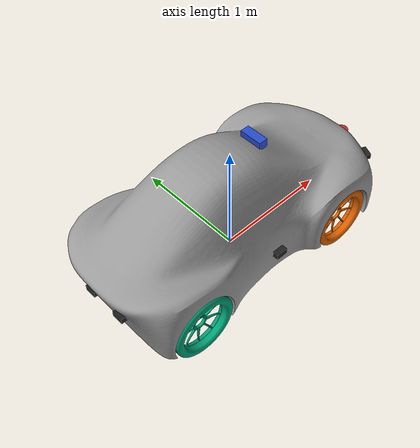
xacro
<?xml version="1.0"?>
<robot name="via"
    xmlns:xacro="http://www.ros.org/wiki/xacro">
    <link name="base_footprint" />

    <xacro:include filename="inertial_macros.xacro" />

    <xacro:property name="base_length" value="2.63" />
    <xacro:property name="base_width" value="1.26" />
    <xacro:property name="base_height" value="0.928" />

    <xacro:property name="base_radius" value="0.25" />
    <xacro:property name="wheel_length" value="0.12" />
    <xacro:property name="front_wheel_x_offset" value="0.6775" />
    <xacro:property name="rear_wheel_x_offset" value="0.82" />
    <xacro:property name="wheel_z_offset" value="0.1" />

    <link name="base_link">
        <xacro:inertial_box mass="100" x="${base_length}" y="${base_width}" z="${base_height}">
            <origin xyz="0 0 ${base_height/2}" rpy="0 0 0" />
        </xacro:inertial_box>
        <visual>
            <origin rpy="0 0 1.57" xyz="0 0 ${base_height/2}" />
            <geometry>
                <mesh filename="package://via_description/meshes/via_chassis.dae" />
            </geometry>
            <material name="Gray" />
        </visual>
        <collision>
            <origin rpy="0 0 1.57" xyz="0 0 ${base_height/2}" />
            <geometry>
                <mesh filename="package://via_description/meshes/via_chassis.dae" />
            </geometry>
        </collision>
    </link>

    <link name="rear_right_axle">
        <visual>
            <geometry>
                <mesh filename="package://via_description/meshes/tire.dae" />
            </geometry>
            <origin xyz="0 0 0" rpy="${pi / 2.0} 0 0" />
        </visual>

        <xacro:inertial_cylinder mass="10" length="${wheel_length}" radius="${base_radius}">
            <origin xyz="0 0 0" rpy="${pi / 2.0} 0 0" />
        </xacro:inertial_cylinder>

        <collision>
            <geometry>
                <cylinder radius="${base_radius}" length="${wheel_length}" />
            </geometry>
            <origin xyz="0 0 0" rpy="${pi / 2.0} 0 0" />
        </collision>
    </link>

    <link name="rear_left_axle">
        <visual>
            <geometry>
                <mesh filename="package://via_description/meshes/tire.dae" />
            </geometry>
            <origin xyz="0 0 0" rpy="${pi / 2.0} 0 ${pi}" />
        </visual>

        <xacro:inertial_cylinder mass="10" length="${wheel_length}" radius="${base_radius}">
            <origin xyz="0 0 0" rpy="${pi / 2.0} 0 0" />
        </xacro:inertial_cylinder>

        <collision>
            <geometry>
                <cylinder radius="${base_radius}" length="${wheel_length}" />
            </geometry>
            <origin xyz="0 0 0" rpy="${pi / 2.0} 0 0" />
        </collision>
    </link>

    <link name="front_right_steer">
        <inertial>
            <origin rpy="0 0 0" xyz="0.003381 1.5929e-07 0.02162" />
            <mass value="1" />
            <inertia ixx="0.01" ixy="0.0" ixz="0.0" iyy="0.01" iyz="0.0" izz="0.01" />
        </inertial>
    </link>

    <link name="front_right_axle">
        <visual>
            <geometry>
                <mesh filename="package://via_description/meshes/tire.dae" />
            </geometry>
            <origin xyz="0 0 0" rpy="${pi / 2.0} 0 0" />
        </visual>

        <xacro:inertial_cylinder mass="10" length="${wheel_length}" radius="${base_radius}">
            <origin xyz="0 0 0" rpy="${pi / 2.0} 0 0" />
        </xacro:inertial_cylinder>

        <collision>
            <geometry>
                <cylinder radius="${base_radius}" length="${wheel_length}" />
            </geometry>
            <origin xyz="0 0 0" rpy="${pi / 2.0} 0 0" />
        </collision>
    </link>

    <link name="front_left_steer">
        <inertial>
            <origin rpy="0 0 0" xyz="0.003381 1.5929e-07 0.02162" />
            <mass value="1" />
            <inertia ixx="0.01" ixy="0.0" ixz="0.0" iyy="0.01" iyz="0.0" izz="0.01" />
        </inertial>
    </link>

    <link name="front_left_axle">
        <visual>
            <geometry>
                <mesh filename="package://via_description/meshes/tire.dae" />
            </geometry>
            <origin xyz="0 0 0" rpy="${pi / 2.0} 0 ${pi}" />
        </visual>

        <xacro:inertial_cylinder mass="10" length="${wheel_length}" radius="${base_radius}">
            <origin xyz="0 0 0" rpy="${pi / 2.0} 0 0" />
        </xacro:inertial_cylinder>

        <collision>
            <geometry>
                <cylinder radius="${base_radius}" length="${wheel_length}" />
            </geometry>
            <origin xyz="0 0 0" rpy="${pi / 2.0} 0 0" />
        </collision>
    </link>

    <joint name="base_joint" type="fixed">
        <parent link="base_footprint" />
        <child link="base_link" />
        <origin xyz="0 0 ${base_radius-wheel_z_offset}" rpy="0 0 0" />
    </joint>

    <joint name="rear_right_axle_joint" type="continuous">
        <parent link="base_link" />
        <child link="rear_right_axle" />
        <origin
            xyz="${-rear_wheel_x_offset} ${-(base_width / 2.0) + (wheel_length / 2.0)} ${wheel_z_offset}"
            rpy="0 0 0" />
        <axis xyz="0 1 0" />
    </joint>

    <joint name="rear_left_axle_joint" type="continuous">
        <parent link="base_link" />
        <child link="rear_left_axle" />
        <origin
            xyz="${-rear_wheel_x_offset} ${(base_width / 2.0) - (wheel_length / 2.0)} ${wheel_z_offset}"
            rpy="0 0 0" />
        <axis xyz="0 1 0" />
    </joint>

    <joint name="front_right_steer_joint" type="continuous">
        <parent link="base_link" />
        <child link="front_right_steer" />
        <origin
            xyz="${front_wheel_x_offset} ${-(base_width / 2.0) + (wheel_length / 2.0)} ${wheel_z_offset}"
            rpy="0 0 0" />
        <axis xyz="0 0 1" />
    </joint>

    <joint name="front_right_axle_joint" type="continuous">
        <parent link="front_right_steer" />
        <child link="front_right_axle" />
        <origin xyz="0 0 0" rpy="0 0 0" />
        <axis xyz="0 1 0" />
    </joint>

    <joint name="front_left_steer_joint" type="continuous">
        <parent link="base_link" />
        <child link="front_left_steer" />
        <origin
            xyz="${front_wheel_x_offset} ${(base_width / 2.0) - (wheel_length / 2.0)} ${wheel_z_offset}"
            rpy="0 0 0" />
        <axis xyz="0 0 1" />
    </joint>

    <joint name="front_left_axle_joint" type="continuous">
        <parent link="front_left_steer" />
        <child link="front_left_axle" />
        <origin xyz="0 0 0" rpy="0 0 0" />
        <axis xyz="0 1 0" />
    </joint>

    <xacro:include filename="ray.xacro" />
    <xacro:include filename="camera.xacro" />
    <xacro:include filename="imu.xacro" />
    <xacro:include filename="gps.xacro" />
    <xacro:include filename="distance.xacro" />
    <xacro:include filename="depth.xacro" />
    <xacro:include filename="via_gazebo.xacro" />

</robot>

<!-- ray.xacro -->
<robot xmlns:xacro="http://www.ros.org/wiki/xacro">

    <xacro:property name="laser_radius" value="0.055" />
    <xacro:property name="laser_length" value="0.08" />
    <xacro:property name="laser_z_offset" value="0.2" />

    <link name="base_scan">
        <inertial>
            <mass value="0.2" />
            <origin rpy="0 0 0" xyz="0 0 0" />
            <inertia ixx="0.0006066666666666668" ixy="0" ixz="0" iyy="0.0006066666666666668" iyz="0"
                izz="0.0010000000000000002" />
        </inertial>
        <visual>
            <origin rpy="0 0 0" xyz="0 0 0" />
            <geometry>
                <cylinder length="${laser_length}" radius="${laser_radius}" />
            </geometry>
            <material name="Red" />
        </visual>
    </link>

    <joint name="lidar_joint" type="fixed">
        <parent link="base_link" />
        <child link="base_scan" />
        <origin rpy="0 0 0" xyz="${base_length/2 + laser_radius} 0 ${laser_z_offset}" />
    </joint>

    <gazebo reference="base_scan">
        <material>Gazebo/FlatBlack</material>
        <sensor name="head_hokuyo_sensor_0" type="ray">
            <always_on>true</always_on>
            <visualize>false</visualize>
            <update_rate>10</update_rate>
            <ray>
                <scan>
                    <horizontal>
                        <samples>720</samples>
                        <resolution>1.000000</resolution>
                        <min_angle>-3.14</min_angle>
                        <max_angle>3.14</max_angle>
                    </horizontal>
                </scan>
                <range>
                    <min>0.050000</min>
                    <max>40.0</max>
                    <resolution>0.010</resolution>
                </range>
                <noise>
                    <type>gaussian</type>
                    <mean>0.0</mean>
                    <stddev>0.01</stddev>
                </noise>
            </ray>
            <plugin name="ray_controller"
                filename="libgazebo_ros_ray_sensor.so">
                <ros>
                    <remapping>~/out:=/scan_raw</remapping>
                </ros>
                <output_type>sensor_msgs/LaserScan</output_type>
                <frame_name>base_scan</frame_name>
            </plugin>
        </sensor>
    </gazebo>

</robot>

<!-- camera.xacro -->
<robot xmlns:xacro="http://www.ros.org/wiki/xacro">

    <xacro:property name="camera_x_offset" value="0.25" />
    <xacro:property name="camera_z_offset" value="0.85" />

    <link name="camera_link">
        <inertial>
            <mass value="0.1" />
            <origin rpy="0 0 0" xyz="0 0 0" />
            <inertia ixx="0.0003866666666666667" ixy="0" ixz="0" iyy="0.00010666666666666668" iyz="0" izz="0.0003866666666666667" />
        </inertial>
        <visual>
            <origin rpy="0 0 0" xyz="0 0 0" />
            <geometry>
                <box size="0.08 0.2 0.08" />
            </geometry>
            <material name="Blue" />
        </visual>
        <collision>
            <origin rpy="0 0 0" xyz="0 0 0" />
            <geometry>
                <box size="0.08 0.2 0.08" />
            </geometry>
        </collision>
    </link>
    <joint name="camera_joint" type="fixed">
        <parent link="base_link" />
        <child link="camera_link" />
        <origin rpy="0 0 0" xyz="${camera_x_offset} 0 ${camera_z_offset}" />
    </joint>
    <!-- Camera Optical Frame -->
    <link name="camera_optical" />
    <joint name="camera_optical_joint" type="fixed">
        <parent link="camera_link" />
        <child link="camera_optical" />
        <!-- Rotate to align with ROS optical frame convention:
           X: Right, Y: Down, Z: Forward -->
        <origin rpy="-1.5707963267948966 0 -1.5707963267948966" xyz="0 0 0" />
    </joint>

    <gazebo reference="camera_link">
        <sensor name='camera_sensor' type='camera'>
            <always_on>1</always_on>
            <update_rate>100</update_rate>
            <camera name='camera0'>
                <pose>0 0 0 0 -0 0</pose>
                <horizontal_fov>1.91986</horizontal_fov>
                <image>
                    <width>672</width>
                    <height>376</height>
                    <format>R8G8B8</format>
                </image>
                <clip>
                    <near>0.3</near>
                    <far>130</far>
                </clip>
                <vertical_fov>1.2217304764</vertical_fov>
            </camera>
            <plugin name='camera_controller' filename='libgazebo_ros_camera.so'>
                <ros>
                    <namespace>zed_cam</namespace>
                </ros>
                <frame_name>camera_optical</frame_name>
            </plugin>
        </sensor>
    </gazebo>

</robot>

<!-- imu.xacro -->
<robot xmlns:xacro="http://www.ros.org/wiki/xacro">

    <link name='imu_link'>
        <visual name='visual'>
            <origin xyz="0 0 0.0" rpy="0 0 0" />
            <geometry>
                <box size="0.05 0.1 0.05" />
            </geometry>
        </visual>

        <collision>
            <origin xyz="0 0 0" rpy="0 0 0" />
            <geometry>
                <box size="0.1 0.1 0.1" />
            </geometry>
        </collision>

        <inertial>
            <mass value="0.1" />
            <origin xyz="0 0 0" rpy="0 0 0" />
            <inertia ixx="0.001" ixy="0.0" ixz="0.0" iyy="0.001" iyz="0.0" izz="0.001" />
        </inertial>
    </link>

    <joint name="imu_joint" type="fixed">
        <parent link="base_link" />
        <child link="imu_link" />
        <origin xyz="0 0 0" rpy="0 0 0" />
        <axis xyz="0 0 1" />
    </joint>

    <gazebo reference="imu_link">
        <sensor name="via_imu" type="imu">
            <always_on>true</always_on>
            <update_rate>100</update_rate>
            <visualize>true</visualize>
            <imu>
            <!-- Currently, noise on orientation is not supported. If you need this feature, consider adding it to gazebo. -->
              <orientation>
                <x>
                  <noise type="gaussian">
                    <mean>0.0</mean>
                    <stddev>2e-3</stddev>
                  </noise>
                </x>
                <y>
                  <noise type="gaussian">
                    <mean>0.0</mean>
                    <stddev>2e-3</stddev>
                  </noise>
                </y>
                <z>
                  <noise type="gaussian">
                    <mean>0.0</mean>
                    <stddev>2e-3</stddev>
                  </noise>
                </z>
              </orientation>
              <angular_velocity>
                <x>
                  <noise type="gaussian">
                    <mean>0.0</mean>
                    <stddev>2e-4</stddev>
                  </noise>
                </x>
                <y>
                  <noise type="gaussian">
                    <mean>0.0</mean>
                    <stddev>2e-4</stddev>
                  </noise>
                </y>
                <z>
                  <noise type="gaussian">
                    <mean>0.0</mean>
                    <stddev>2e-4</stddev>
                  </noise>
                </z>
              </angular_velocity>
              <linear_acceleration>
                <x>
                  <noise type="gaussian">
                    <mean>0.0</mean>
                    <stddev>1.7e-2</stddev>
                  </noise>
                </x>
                <y>
                  <noise type="gaussian">
                    <mean>0.0</mean>
                    <stddev>1.7e-2</stddev>
                  </noise>
                </y>
                <z>
                  <noise type="gaussian">
                    <mean>0.0</mean>
                    <stddev>1.7e-2</stddev>
                  </noise>
                </z>
              </linear_acceleration>
            </imu>
            <plugin name="imu_plugin" filename="libgazebo_ros_imu_sensor.so">
              <initial_orientation_as_reference>false</initial_orientation_as_reference>
              <frame_name>imu_link</frame_name>
              <ros>
                <namespace>/imu</namespace>
                <remapping>~/out:=data</remapping>
              </ros>
            </plugin>
          </sensor>
    </gazebo>

</robot>

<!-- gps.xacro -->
<robot xmlns:xacro="http://www.ros.org/wiki/xacro">

    <link name='gps_link'>
        <visual name='visual'>
            <origin xyz="0 0 0.0" rpy="0 0 0" />
            <geometry>
                <box size="0.05 0.1 0.05" />
            </geometry>
        </visual>

        <collision>
            <origin xyz="0 0 0" rpy="0 0 0" />
            <geometry>
                <box size="0.1 0.1 0.1" />
            </geometry>
        </collision>

        <inertial>
            <mass value="0.1" />
            <origin xyz="0 0 0" rpy="0 0 0" />
            <inertia ixx="0.001" ixy="0.0" ixz="0.0" iyy="0.001" iyz="0.0" izz="0.001" />
        </inertial>
    </link>

    <joint name="gps_joint" type="fixed">
        <parent link="base_link" />
        <child link="gps_link" />
        <origin xyz="0 0 0" rpy="0 0 0" />
        <axis xyz="0 0 1" />
    </joint>

    <gazebo reference="gps_link">
        <sensor name="via_gps" type="gps">
            <always_on>true</always_on>
            <update_rate>10.0</update_rate>
            <gps>
              <position_sensing>
                <horizontal>
                  <noise type="gaussian">
                    <mean>0.0</mean>
                    <stddev>1e-2</stddev>
                  </noise>
                </horizontal>
                <vertical>
                  <noise type="gaussian">
                    <mean>0.0</mean>
                    <stddev>1</stddev>
                  </noise>
                </vertical>
              </position_sensing>
            </gps>
            <plugin name="gps_plugin" filename="libgazebo_ros_gps_sensor.so">
              <ros>
                <remapping>~/out:=gps/fix</remapping>
              </ros>
            </plugin>
          </sensor>
    </gazebo>

</robot>

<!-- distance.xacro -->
<robot xmlns:xacro="http://www.ros.org/wiki/xacro">

    <xacro:property name="distance_z_offset" value="0.2" />

    <xacro:property name="distance_0_x" value="${base_length/2}" />
    <xacro:property name="distance_0_y" value="${base_width/4}" />
    <xacro:property name="distance_0_r" value="${pi/8}" />

    <xacro:property name="distance_1_x" value="${base_length/2}" />
    <xacro:property name="distance_1_y" value="-${base_width/4}" />
    <xacro:property name="distance_1_r" value="-${pi/8}" />

    <xacro:property name="distance_2_x" value="0.0" />
    <xacro:property name="distance_2_y" value="-${7*base_width/16}" />
    <xacro:property name="distance_2_r" value="-${pi/2}" />

    <xacro:property name="distance_3_x" value="0.0" />
    <xacro:property name="distance_3_y" value="${7*base_width/16}" />
    <xacro:property name="distance_3_r" value="${pi/2}" />

    <xacro:property name="distance_4_x" value="-${15*base_length/32}" />
    <xacro:property name="distance_4_y" value="${base_width/8}" />
    <xacro:property name="distance_4_r" value="${pi}" />

    <xacro:property name="distance_5_x" value="-${15*base_length/32}" />
    <xacro:property name="distance_5_y" value="-${base_width/8}" />
    <xacro:property name="distance_5_r" value="${pi}" />

    <link name='distance_0'>
        <visual name='visual'>
            <origin xyz="0 0 0.0" rpy="0 0 0" />
            <geometry>
                <box size="0.05 0.1 0.05" />
            </geometry>
        </visual>

        <collision>
            <origin xyz="0 0 0" rpy="0 0 0" />
            <geometry>
                <box size="0.1 0.1 0.1" />
            </geometry>
        </collision>

        <inertial>
            <mass value="0.1" />
            <origin xyz="0 0 0" rpy="0 0 0" />
            <inertia ixx="0.001" ixy="0.0" ixz="0.0" iyy="0.001" iyz="0.0" izz="0.001" />
        </inertial>
    </link>

    <joint name="distance_0_joint" type="fixed">
        <parent link="base_link" />
        <child link="distance_0" />
        <origin xyz="${distance_0_x} ${distance_0_y} ${distance_z_offset}" rpy="0 0 ${distance_0_r}" />
        <axis xyz="0 0 0" />
    </joint>

    <link name='distance_1'>
        <visual name='visual'>
            <origin xyz="0 0 0.0" rpy="0 0 0" />
            <geometry>
                <box size="0.05 0.1 0.05" />
            </geometry>
        </visual>

        <collision>
            <origin xyz="0 0 0" rpy="0 0 0" />
            <geometry>
                <box size="0.1 0.1 0.1" />
            </geometry>
        </collision>

        <inertial>
            <mass value="0.1" />
            <origin xyz="0 0 0" rpy="0 0 0" />
            <inertia ixx="0.001" ixy="0.0" ixz="0.0" iyy="0.001" iyz="0.0" izz="0.001" />
        </inertial>
    </link>

    <joint name="distance_1_joint" type="fixed">
        <parent link="base_link" />
        <child link="distance_1" />
        <origin xyz="${distance_1_x} ${distance_1_y} ${distance_z_offset}" rpy="0 0 ${distance_1_r}" />
        <axis xyz="0 0 0" />
    </joint>

    <link name='distance_2'>
        <visual name='visual'>
            <origin xyz="0 0 0.0" rpy="0 0 0" />
            <geometry>
                <box size="0.05 0.1 0.05" />
            </geometry>
        </visual>

        <collision>
            <origin xyz="0 0 0" rpy="0 0 0" />
            <geometry>
                <box size="0.1 0.1 0.1" />
            </geometry>
        </collision>

        <inertial>
            <mass value="0.1" />
            <origin xyz="0 0 0" rpy="0 0 0" />
            <inertia ixx="0.001" ixy="0.0" ixz="0.0" iyy="0.001" iyz="0.0" izz="0.001" />
        </inertial>
    </link>

    <joint name="distance_2_joint" type="fixed">
        <parent link="base_link" />
        <child link="distance_2" />
        <origin xyz="${distance_2_x} ${distance_2_y} ${distance_z_offset}" rpy="0 0 ${distance_2_r}" />
        <axis xyz="0 0 0" />
    </joint>

    <link name='distance_3'>
        <visual name='visual'>
            <origin xyz="0 0 0.0" rpy="0 0 0" />
            <geometry>
                <box size="0.05 0.1 0.05" />
            </geometry>
        </visual>

        <collision>
            <origin xyz="0 0 0" rpy="0 0 0" />
            <geometry>
                <box size="0.1 0.1 0.1" />
            </geometry>
        </collision>

        <inertial>
            <mass value="0.1" />
            <origin xyz="0 0 0" rpy="0 0 0" />
            <inertia ixx="0.001" ixy="0.0" ixz="0.0" iyy="0.001" iyz="0.0" izz="0.001" />
        </inertial>
    </link>

    <joint name="distance_3_joint" type="fixed">
        <parent link="base_link" />
        <child link="distance_3" />
        <origin xyz="${distance_3_x} ${distance_3_y} ${distance_z_offset}" rpy="0 0 ${distance_3_r}" />
        <axis xyz="0 0 0" />
    </joint>

    <link name='distance_4'>
        <visual name='visual'>
            <origin xyz="0 0 0.0" rpy="0 0 0" />
            <geometry>
                <box size="0.05 0.1 0.05" />
            </geometry>
        </visual>

        <collision>
            <origin xyz="0 0 0" rpy="0 0 0" />
            <geometry>
                <box size="0.1 0.1 0.1" />
            </geometry>
        </collision>

        <inertial>
            <mass value="0.1" />
            <origin xyz="0 0 0" rpy="0 0 0" />
            <inertia ixx="0.001" ixy="0.0" ixz="0.0" iyy="0.001" iyz="0.0" izz="0.001" />
        </inertial>
    </link>

    <joint name="distance_4_joint" type="fixed">
        <parent link="base_link" />
        <child link="distance_4" />
        <origin xyz="${distance_4_x} ${distance_4_y} ${distance_z_offset}" rpy="0 0 ${distance_4_r}" />
        <axis xyz="0 0 0" />
    </joint>

    <link name='distance_5'>
        <visual name='visual'>
            <origin xyz="0 0 0.0" rpy="0 0 0" />
            <geometry>
                <box size="0.05 0.1 0.05" />
            </geometry>
        </visual>

        <collision>
            <origin xyz="0 0 0" rpy="0 0 0" />
            <geometry>
                <box size="0.1 0.1 0.1" />
            </geometry>
        </collision>

        <inertial>
            <mass value="0.1" />
            <origin xyz="0 0 0" rpy="0 0 0" />
            <inertia ixx="0.001" ixy="0.0" ixz="0.0" iyy="0.001" iyz="0.0" izz="0.001" />
        </inertial>
    </link>

    <joint name="distance_5_joint" type="fixed">
        <parent link="base_link" />
        <child link="distance_5" />
        <origin xyz="${distance_5_x} ${distance_5_y} ${distance_z_offset}" rpy="0 0 ${distance_5_r}" />
        <axis xyz="0 0 0" />
    </joint>

    <gazebo reference="distance_0">
        <material>Gazebo/FlatBlack</material>
        <sensor name="distance_0_sensor" type="ray">
            <always_on>true</always_on>
            <visualize>false</visualize>
            <update_rate>100</update_rate>
            <ray>
                <scan>
                    <horizontal>
                        <samples>5</samples>
                        <resolution>1.000000</resolution>
                        <min_angle>0.1</min_angle>
                        <max_angle>0.1</max_angle>
                    </horizontal>
                </scan>
                <range>
                    <min>0.120000</min>
                    <max>12.0</max>
                    <resolution>0.010</resolution>
                </range>
                <noise>
                    <type>gaussian</type>
                    <mean>0.0</mean>
                    <stddev>0.01</stddev>
                </noise>
            </ray>
            <plugin name="distance_0"
                filename="libgazebo_ros_ray_sensor.so">
                <ros>
                    <remapping>~/out:=/distance_0</remapping>
                </ros>
                <output_type>sensor_msgs/Range</output_type>
                <frame_name>distance_0</frame_name>
            </plugin>
        </sensor>
    </gazebo>

    <gazebo reference="distance_1">
        <material>Gazebo/FlatBlack</material>
        <sensor name="distance_1_sensor" type="ray">
            <always_on>true</always_on>
            <visualize>false</visualize>
            <update_rate>100</update_rate>
            <ray>
                <scan>
                    <horizontal>
                        <samples>5</samples>
                        <resolution>1.000000</resolution>
                        <min_angle>0.1</min_angle>
                        <max_angle>0.1</max_angle>
                    </horizontal>
                </scan>
                <range>
                    <min>0.120000</min>
                    <max>12.0</max>
                    <resolution>0.010</resolution>
                </range>
                <noise>
                    <type>gaussian</type>
                    <mean>0.0</mean>
                    <stddev>0.01</stddev>
                </noise>
            </ray>
            <plugin name="distance_1"
                filename="libgazebo_ros_ray_sensor.so">
                <ros>
                    <remapping>~/out:=/distance_1</remapping>
                </ros>
                <output_type>sensor_msgs/Range</output_type>
                <frame_name>distance_1</frame_name>
            </plugin>
        </sensor>
    </gazebo>

    <gazebo reference="distance_2">
        <material>Gazebo/FlatBlack</material>
        <sensor name="distance_2_sensor" type="ray">
            <always_on>true</always_on>
            <visualize>false</visualize>
            <update_rate>100</update_rate>
            <ray>
                <scan>
                    <horizontal>
                        <samples>5</samples>
                        <resolution>1.000000</resolution>
                        <min_angle>0.1</min_angle>
                        <max_angle>0.1</max_angle>
                    </horizontal>
                </scan>
                <range>
                    <min>0.120000</min>
                    <max>12.0</max>
                    <resolution>0.010</resolution>
                </range>
                <noise>
                    <type>gaussian</type>
                    <mean>0.0</mean>
                    <stddev>0.01</stddev>
                </noise>
            </ray>
            <plugin name="distance_2"
                filename="libgazebo_ros_ray_sensor.so">
                <ros>
                    <remapping>~/out:=/distance_2</remapping>
                </ros>
                <output_type>sensor_msgs/Range</output_type>
                <frame_name>distance_2</frame_name>
            </plugin>
        </sensor>
    </gazebo>

    <gazebo reference="distance_3">
        <material>Gazebo/FlatBlack</material>
        <sensor name="distance_3_sensor" type="ray">
            <always_on>true</always_on>
            <visualize>false</visualize>
            <update_rate>100</update_rate>
            <ray>
                <scan>
                    <horizontal>
                        <samples>5</samples>
                        <resolution>1.000000</resolution>
                        <min_angle>0.1</min_angle>
                        <max_angle>0.1</max_angle>
                    </horizontal>
                </scan>
                <range>
                    <min>0.120000</min>
                    <max>12.0</max>
                    <resolution>0.010</resolution>
                </range>
                <noise>
                    <type>gaussian</type>
                    <mean>0.0</mean>
                    <stddev>0.01</stddev>
                </noise>
            </ray>
            <plugin name="distance_3"
                filename="libgazebo_ros_ray_sensor.so">
                <ros>
                    <remapping>~/out:=/distance_3</remapping>
                </ros>
                <output_type>sensor_msgs/Range</output_type>
                <frame_name>distance_3</frame_name>
            </plugin>
        </sensor>
    </gazebo>

    <gazebo reference="distance_4">
        <material>Gazebo/FlatBlack</material>
        <sensor name="distance_4_sensor" type="ray">
            <always_on>true</always_on>
            <visualize>false</visualize>
            <update_rate>100</update_rate>
            <ray>
                <scan>
                    <horizontal>
                        <samples>5</samples>
                        <resolution>1.000000</resolution>
                        <min_angle>0.1</min_angle>
                        <max_angle>0.1</max_angle>
                    </horizontal>
                </scan>
                <range>
                    <min>0.120000</min>
                    <max>12.0</max>
                    <resolution>0.010</resolution>
                </range>
                <noise>
                    <type>gaussian</type>
                    <mean>0.0</mean>
                    <stddev>0.01</stddev>
                </noise>
            </ray>
            <plugin name="distance_4"
                filename="libgazebo_ros_ray_sensor.so">
                <ros>
                    <remapping>~/out:=/distance_4</remapping>
                </ros>
                <output_type>sensor_msgs/Range</output_type>
                <frame_name>distance_4</frame_name>
            </plugin>
        </sensor>
    </gazebo>

    <gazebo reference="distance_5">
        <material>Gazebo/FlatBlack</material>
        <sensor name="distance_5_sensor" type="ray">
            <always_on>true</always_on>
            <visualize>false</visualize>
            <update_rate>100</update_rate>
            <ray>
                <scan>
                    <horizontal>
                        <samples>5</samples>
                        <resolution>1.000000</resolution>
                        <min_angle>0.1</min_angle>
                        <max_angle>0.1</max_angle>
                    </horizontal>
                </scan>
                <range>
                    <min>0.120000</min>
                    <max>12.0</max>
                    <resolution>0.010</resolution>
                </range>
                <noise>
                    <type>gaussian</type>
                    <mean>0.0</mean>
                    <stddev>0.01</stddev>
                </noise>
            </ray>
            <plugin name="distance_5"
                filename="libgazebo_ros_ray_sensor.so">
                <ros>
                    <remapping>~/out:=/distance_5</remapping>
                </ros>
                <output_type>sensor_msgs/Range</output_type>
                <frame_name>distance_5</frame_name>
            </plugin>
        </sensor>
    </gazebo>

</robot>
